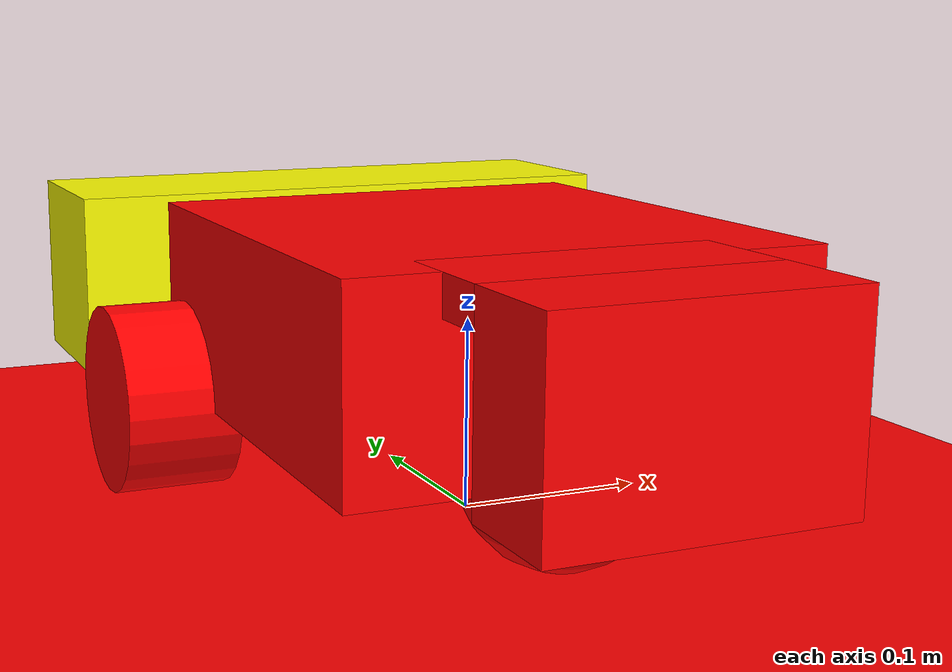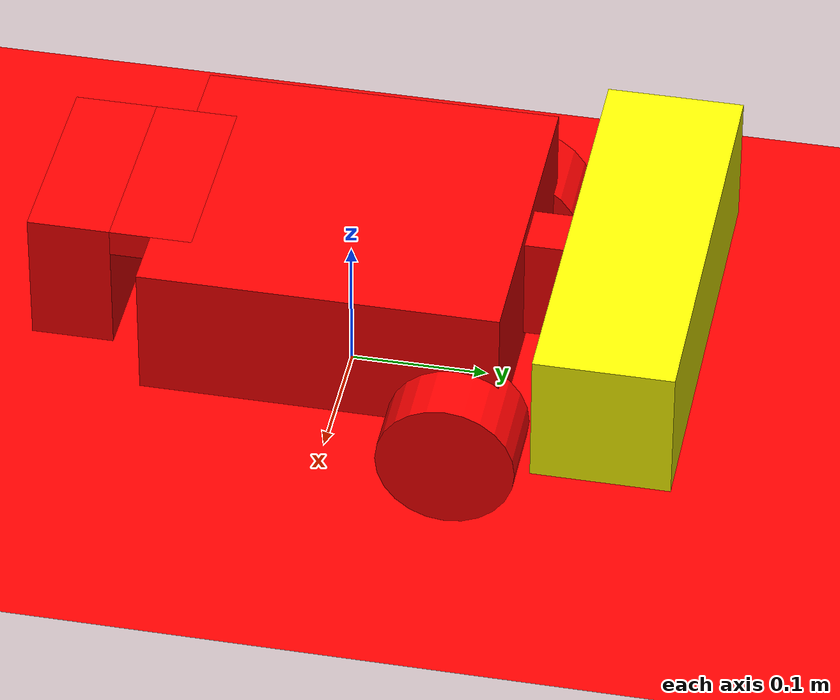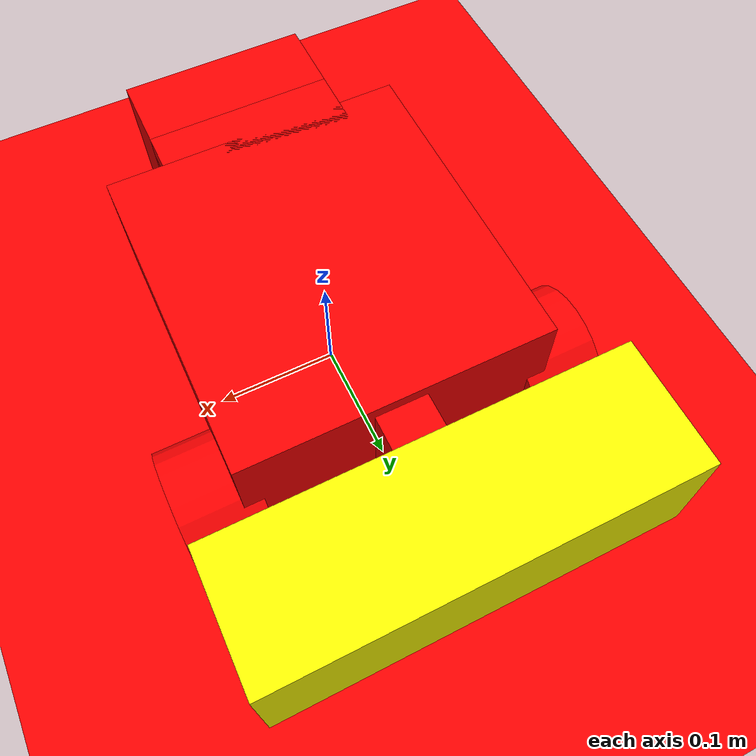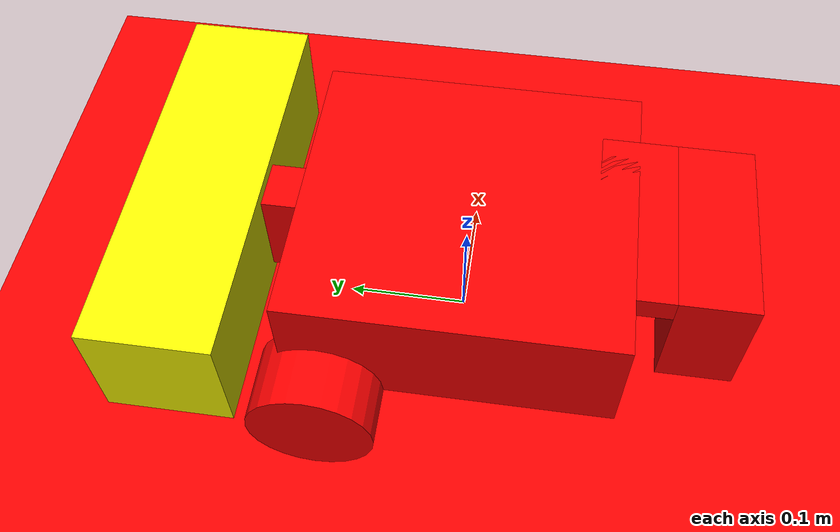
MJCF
<mujoco>
    <size njmax="3000" nconmax="1000"/>
    <option timestep="0.004"/>
    <default>
        <geom condim="6" density="5" rgba="1 0 0 1" size=".05" type="sphere"/>
        <joint damping=".001"/>
        <motor ctrlrange="-1 1" ctrllimited="true" forcerange="-.02 .02" forcelimited="true"/>
        <site size="0.032" type="sphere"/>
    </default>
    <worldbody>
        <geom name="floor" size="5 5 0.1" type="plane" condim="6"/>
        <body name="robot" pos="0 0 .1">
            <site name="robot" pos="0 0 0"/>
            <camera name="vision" pos="0 0.1 .2" xyaxes="-1 0 0 0 -.4 1"/>
            <joint type="free" name="robot" damping="0"/>
            <geom name="robot" type="box" size=".12 .13 .05"/>
            <geom name="back_bumper" type="box" pos="0 .21 0" size=".16 .05 .05" rgba="1 1 0 1"/>
            <geom name="back_connector" type="box" pos="0 .125 0" size=".02 .04 .04"/>
            <geom name="front_bumper" type="box" pos="0 -.19 0" size=".075 .03 .05"/>
            <geom name="front_connector" type="box" pos="0 -.13 .04" size=".075 .03 .01"/>
            <body name="left" pos="-.1 .1 -.05">
                <joint type="hinge" name="left" axis="1 0 0"/>
                <geom type="cylinder" name="left" fromto="-.065 0 0 -0.005 0 0"/>
            </body>
            <body name="right" pos=".1 .1 -.05">
                <joint type="hinge" name="right" axis="1 0 0"/>
                <geom type="cylinder" name="right" fromto="0.005 0 0 .065 0 0"/>
            </body>
            <body name="rear" pos="0 -.1 -.05">
                <joint name="rear" type="ball"/>
                <geom name="rear"/>
            </body>
        </body>
    </worldbody>
    <sensor>

        <ballquat joint="rear" name="ballquat_rear"/>
        <ballangvel joint="rear" name="ballangvel_rear"/>

        <!-- Used for observation -->
        <accelerometer site="robot" name="accelerometer"/>
        <velocimeter site="robot" name="velocimeter"/>
        <gyro site="robot" name="gyro"/>
        <magnetometer site="robot" name="magnetometer"/>

        <!-- Used for intrinsic constraints -->
        <subtreecom body="robot" name="subtreecom"/>
        <subtreelinvel body="robot" name="subtreelinvel"/>
        <subtreeangmom body="robot" name="subtreeangmom"/>
    </sensor>
    <actuator>
        <motor gear="1" jointinparent="left" name="left"/>
        <motor gear="1" jointinparent="right" name="right"/>
    </actuator>
</mujoco>
